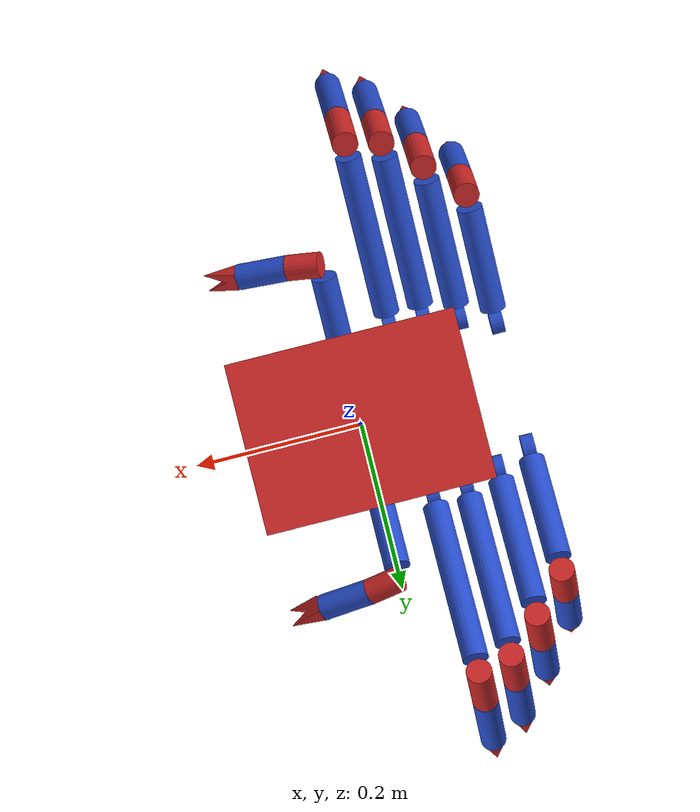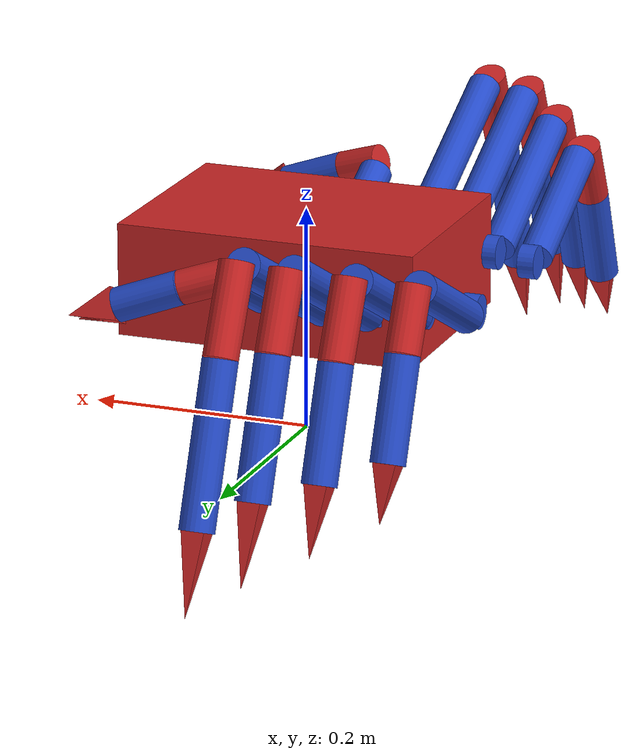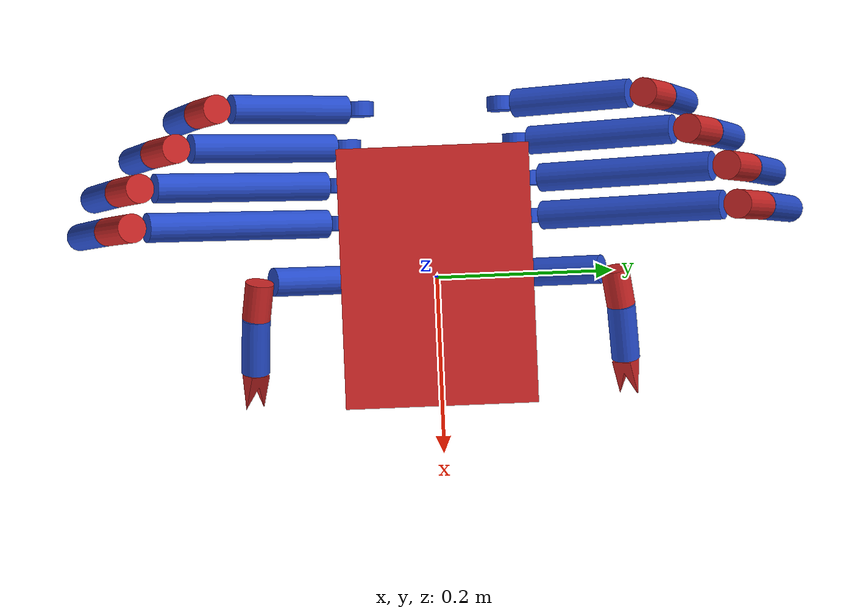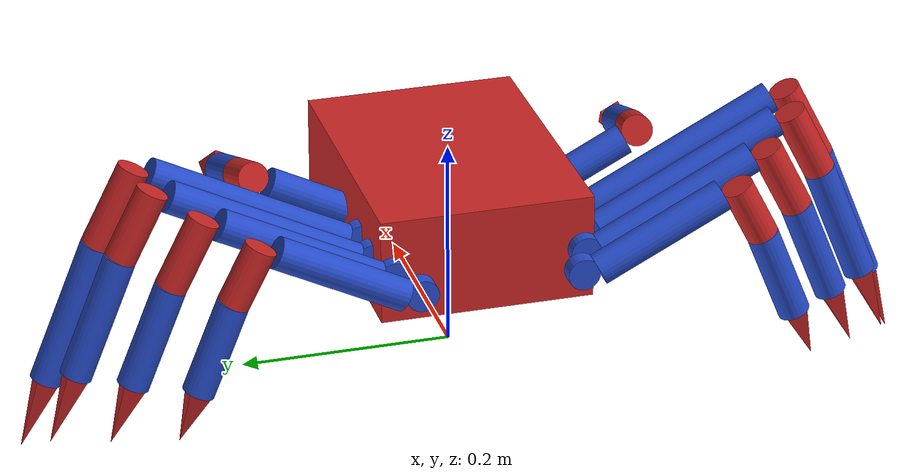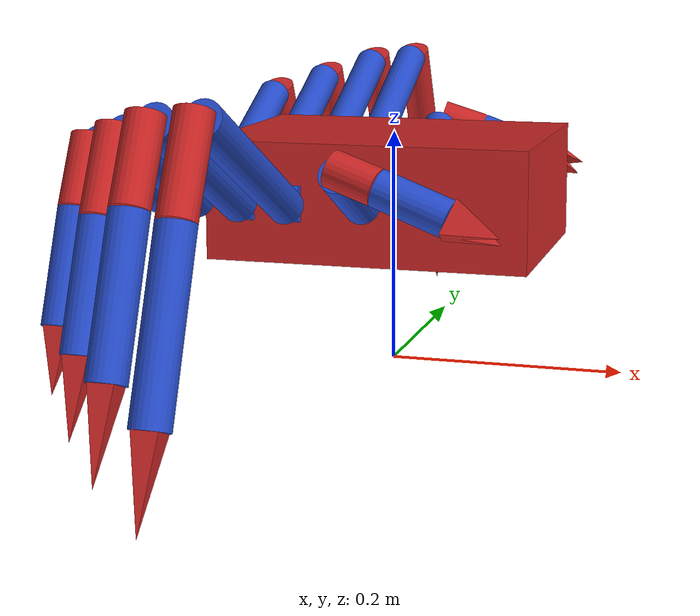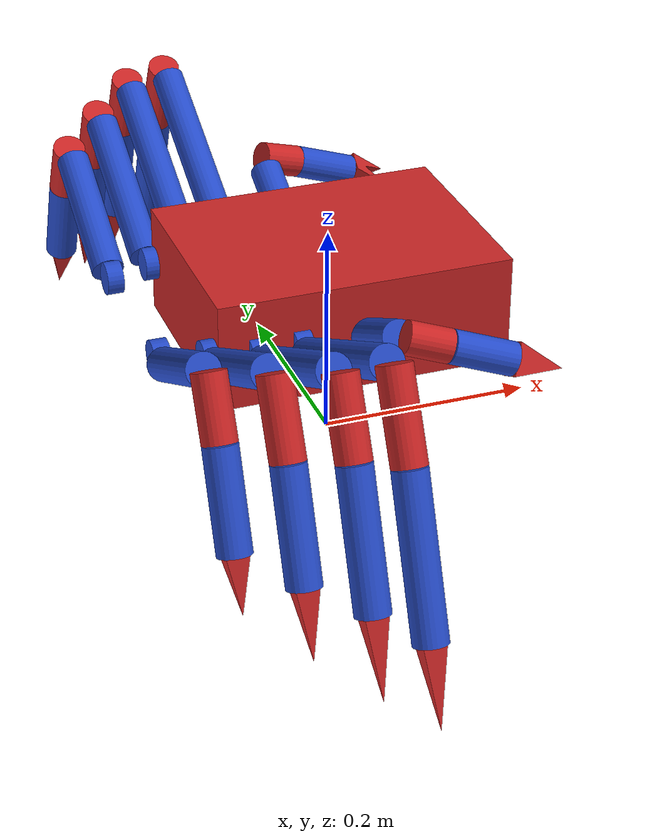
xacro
<?xml version="1.0"?>
<robot xmlns:xacro="http://www.ros.org/wiki/xacro" name="spider_crab">

  <xacro:arg name="use_ros2_control" default="false"/>
  <xacro:arg name="use_sim_time" default="true"/>

  <xacro:include filename="colors.xacro"/>
  <xacro:include filename="inertial_macros.xacro"/>
  <xacro:include filename="crab_properties.xacro"/>
  <xacro:include filename="crab_legs.xacro"/>
  <xacro:include filename="ros2_control_leg.xacro"/>
  <xacro:include filename="ros2_control_crab.xacro"/>

  <!--BASE LINK-->

  <link name = "base_link"></link>

  <!-- BODY JOINT AND LINK-->

  <joint name="body_joint" type="fixed">
    <parent link="base_link"/>
    <child link="body_link"/>
    <origin xyz="0 0 ${body_link_height}" rpy="0 0 0"/>
  </joint>

  <link name ="body_link">
    <visual>
      <origin xyz="0 0 0" rpy="0 0 0"/>
      <geometry>
        <!-- this mesh is constructed by two Ellipsoids with radius 10cm and radius 7cm seperately -->
        <!-- Connect the two origins of ELlipsoids-->
        <!-- The center of body locates at the intersection of the large Ellipsoid and the staight line-->
        <box size="0.27 0.20 0.1"/>

        <!-- mesh filename="package://crab_model/meshes/crab_body.stl" scale="0.01 0.01 0.01"/ -->
      </geometry>
      <material name="red"/>
    </visual>
    <collision>
      <origin xyz="0 0 0" rpy="0 0 0"/>
      <geometry>
        <box size="0.27 0.20 0.1"/>
        <!-- mesh filename="package://crab_model/meshes/crab_body.stl" scale="0.01 0.01 0.01"/ -->
      </geometry>
    </collision>
    <xacro:inertial_box mass="1.0" x="0.1" y="0.1" z="0.10">
      <origin xyz="0 0 0" rpy="0 0 0"/>
    </xacro:inertial_box>
  </link>

  <!-- EYES JOINT AND LINK-->

  <joint name ="eyes_left" type="fixed">
    <parent link="body_link"/>
    <child link="eyes_left"/>
    <origin xyz="0.07 0.02 0.0" rpy="0.0 1.57 0.16"/>
  </joint>

  <link name="eyes_left">
    <visual>
      <origin xyz="0.0 0.0 0.015" rpy="0.0 0.0 0.0"/>
      <geometry>
        <cylinder length="0.015" radius = "0.005"/>
      </geometry>
      <material name="black"/>
    </visual>
    <collision>
      <origin xyz="0.0 0.0 0.015" rpy="0.0 0.0 0.0"/>
      <geometry>
        <cylinder length="0.015" radius = "0.005"/>
      </geometry>
    </collision>
    <xacro:inertial_box mass="1e-3" x="1e-2" y="1e-2" z="1e-2">
      <origin xyz="0.0 0.0 0.0" rpy="0.0 0.0 0.0"/>
    </xacro:inertial_box>
  </link>

  <joint name ="eyes_right" type="fixed">
    <parent link="body_link"/>
    <child link="eyes_right"/>
    <origin xyz="0.07 -0.02 0.0" rpy="0.0 1.57 -0.16"/>
  </joint>

  <link name="eyes_right">
    <visual>
      <origin xyz="0.0 0.0 0.015" rpy="0.0 0.0 0.0"/>
      <geometry>
        <cylinder length="0.015" radius = "0.005"/>
      </geometry>
      <material name="black"/>
    </visual>
    <collision>
      <origin xyz="0.0 0.0 0.015" rpy="0.0 0.0 0.0"/>
      <geometry>
        <cylinder length="0.015" radius = "0.005"/>
      </geometry>
    </collision>
    <xacro:inertial_box mass="1e-3" x="1e-2" y="1e-2" z="1e-2">
      <origin xyz="0.0 0.0 0.0" rpy="0.0 0.0 0.0"/>
    </xacro:inertial_box>
  </link>

  <gazebo reference="body_link">
      <material>Gazebo/Red</material>
  </gazebo>

  <gazebo reference="eyes_left">
      <material>Gazebo/Black</material>
  </gazebo>

  <gazebo reference="eyes_right">
      <material>Gazebo/Black</material>
  </gazebo>

  <!-- CRAB LEGS-->
  <!-- reflect=1 means left side-->
  <xacro:leg suffix="F1" reflect="1" Ox="0.0" Oy="0.085" Oz="0.0" merus_link_length="0.08" carpus_link_length="0.04" manus_link_length ="0.06" fore_leg_Rz="-1.22" dactyl="-1" scale_x="0.001" scale_y="0.001" scale_z="0.0042"/>
  <xacro:leg suffix="F2" reflect="-1" Ox="0.0" Oy="-0.085" Oz="0.0" merus_link_length="0.08" carpus_link_length="0.04" manus_link_length ="0.06" fore_leg_Rz="-1.22" dactyl="-1" scale_x="0.001" scale_y="0.001" scale_z="0.0042"/>
  <xacro:leg suffix="L1" reflect="1" Ox="-0.06" Oy="0.1" Oz="0.0" merus_link_length="0.20" carpus_link_length="0.08" manus_link_length ="0.14" fore_leg_Rz="0.0" dactyl="1" scale_x="0.001" scale_y="0.001" scale_z="0.007"/>
  <xacro:leg suffix="L2" reflect="1" Ox="-0.10" Oy="0.1" Oz="0.0" merus_link_length="0.19" carpus_link_length="0.07" manus_link_length ="0.12" fore_leg_Rz="0.0" dactyl="1" scale_x="0.001" scale_y="0.001" scale_z="0.007"/>
  <xacro:leg suffix="L3" reflect="1" Ox="-0.14" Oy="0.09" Oz="0.0" merus_link_length="0.16" carpus_link_length="0.07" manus_link_length ="0.10" fore_leg_Rz="0.0" dactyl="1" scale_x="0.001" scale_y="0.001" scale_z="0.006"/>
  <xacro:leg suffix="L4" reflect="1" Ox="-0.18" Oy="0.075" Oz="0.0" merus_link_length="0.13" carpus_link_length="0.058" manus_link_length ="0.09" fore_leg_Rz="0.0" dactyl="1" scale_x="0.001" scale_y="0.001" scale_z="0.005"/>
  <xacro:leg suffix="R1" reflect="-1" Ox="-0.06" Oy="-0.1" Oz="0.0" merus_link_length="0.20" carpus_link_length="0.08" manus_link_length ="0.14" fore_leg_Rz="0.0" dactyl="1" scale_x="0.001" scale_y="0.001" scale_z="0.007"/>
  <xacro:leg suffix="R2" reflect="-1" Ox="-0.10" Oy="-0.1" Oz="0.0" merus_link_length="0.19" carpus_link_length="0.07" manus_link_length ="0.12" fore_leg_Rz="0.0" dactyl="1" scale_x="0.001" scale_y="0.001" scale_z="0.007"/>
  <xacro:leg suffix="R3" reflect="-1" Ox="-0.14" Oy="-0.09" Oz="0.0" merus_link_length="0.16" carpus_link_length="0.07" manus_link_length ="0.10" fore_leg_Rz="0.0" dactyl="1" scale_x="0.001" scale_y="0.001" scale_z="0.006"/>
  <xacro:leg suffix="R4" reflect="-1" Ox="-0.18" Oy="-0.075" Oz="0.0" merus_link_length="0.13" carpus_link_length="0.058" manus_link_length ="0.09" fore_leg_Rz="0.0" dactyl="1" scale_x="0.001" scale_y="0.001" scale_z="0.005"/>

</robot>

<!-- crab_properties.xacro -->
<robot xmlns:xacro="http://www.ros.org/wiki/xacro" >

    <!-- Constant parameters -->

    <xacro:property name="body_link_mass" value="1.0" /> <!-- Kg -->
    <xacro:property name="body_link_height" value="0.15" />
    <xacro:property name="body_link_Rx" value="0.0" /> <!-- rad -->
    <xacro:property name="body_link_Ry" value="0.0" /> <!-- rad -->
    <xacro:property name="body_link_Rz" value="0.0" /> <!-- rad -->

    <xacro:property name="coxa_link_mass" value="0.301" /> <!-- Kg -->
    <xacro:property name="coxa_link_Ox" value="0.0" />
    <xacro:property name="coxa_link_Oy" value="0.0" />
    <xacro:property name="coxa_link_Oz" value="0.0" />
    <xacro:property name="coxa_link_Ry" value="-1.57" /> <!-- rad -->
    <xacro:property name="coxa_link_length" value="0.015" />
    <xacro:property name="coxa_link_radius" value="0.015" />

    <xacro:property name="merus_link_mass" value="0.501" /> <!-- Kg -->
    <xacro:property name="merus_joint_Ox" value="0.0" />
    <xacro:property name="merus_joint_Oy" value="${coxa_link_radius}" />
    <xacro:property name="merus_joint_Oz" value="0.0" />
    <xacro:property name="merus_joint_Rx" value="-1.1" /> <!-- rad -->
    <xacro:property name="merus_link_Ox" value="0.0" />
    <xacro:property name="merus_link_Oy" value="0.0" />
    <xacro:property name="merus_link_Oz" value="0.0"/>
    <xacro:property name="merus_link_radius" value="0.015" />

    <xacro:property name="carpus_link_mass" value="0.501" /> <!-- Kg -->
    <xacro:property name="carpus_joint_Ox" value="0.0" />
    <xacro:property name="carpus_joint_Oy" value="0.0" />
    <xacro:property name="carpus_joint_Oz" value="0.0" />
    <xacro:property name="carpus_joint_Rx" value="-1.57" /> <!-- rad -->
    <xacro:property name="carpus_link_Ox" value="0.0" />
    <xacro:property name="carpus_link_Oy" value="0.0" />
    <xacro:property name="carpus_link_Oz" value="0.0" />
    <xacro:property name="carpus_link_radius" value="0.015" />

    <xacro:property name="manus_link_mass" value="0.501" /> <!-- Kg -->
    <xacro:property name="manus_joint_Ox" value="0.0" />
    <xacro:property name="manus_joint_Oy" value="0.0" />
    <xacro:property name="manus_joint_Oz" value="0.0" />
    <xacro:property name="manus_joint_Rx" value="-0.087" /> <!-- rad -->
    <xacro:property name="manus_link_Ox" value="0.0" />
    <xacro:property name="manus_link_Oy" value="0.0" />
    <xacro:property name="manus_link_Oz" value="0.0" />
    <xacro:property name="manus_link_radius" value="0.015" />

    <xacro:property name="dactyl_mass" value="0.01" /> <!-- Kg -->
    <xacro:property name="dactyl_radius" value="0.015" />
    <xacro:property name="dactyl_joint_Ox" value="0.0" />
    <xacro:property name="dactyl_joint_Oy" value="0.0" />
    <xacro:property name="dactyl_joint_Oz" value="0.0" />
    <xacro:property name="dactyl_joint_Ry" value="0.0" /> <!-- rad -->
    <xacro:property name="dactyl_link_Ox" value="0.0" />
    <xacro:property name="dactyl_link_Oy" value="0.0" />
    <xacro:property name="dactyl_link_Oz" value="0.0" />
</robot>

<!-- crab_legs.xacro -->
<robot xmlns:xacro="http://www.ros.org/wiki/xacro">

    <!-- FORE LEGS -->

    <xacro:macro name="leg" params="suffix reflect Ox Oy Oz merus_link_length carpus_link_length manus_link_length fore_leg_Rz dactyl scale_x scale_y scale_z">

        <!-- COXA JOINT AND LINK-->

        <joint name="coxa_joint_${suffix}" type="revolute">
                <origin xyz="${Ox} ${Oy} ${Oz}" rpy="0.0 0.0 0.0"/>
                <parent link="body_link"/>
                <child link="coxa_link_${suffix}"/>
                <limit effort="250.0" velocity="10.0" lower="-3.14" upper="3.14" />
                <axis xyz="0 0 1"/>
                <dynamics damping="0.7"/>
        </joint>

        <link name="coxa_link_${suffix}">
            <visual>
                <origin xyz="${coxa_link_Ox} ${coxa_link_Oy} ${coxa_link_Oz}" rpy=" 0.0  ${coxa_link_Ry} 0.0"/>
                <geometry>
                    <cylinder length="${coxa_link_length}" radius="${coxa_link_radius}"/>
                </geometry>
                <material name="blue"/>
            </visual>
            <collision>
                <origin xyz="${coxa_link_Ox} ${coxa_link_Oy} ${coxa_link_Oz}" rpy=" 0.0  ${coxa_link_Ry} 0.0"/>
                <geometry>
                    <cylinder length="${coxa_link_length}" radius="${coxa_link_radius}"/>
                </geometry>
            </collision>
            <xacro:inertial_cylinder mass="${coxa_link_mass}" length="${coxa_link_length}" radius="${coxa_link_radius}">
                <origin xyz="${coxa_link_Ox} ${coxa_link_Oy} ${coxa_link_Oz}" rpy=" 0.0  ${coxa_link_Ry} 0.0"/>
            </xacro:inertial_cylinder>
        </link>

        <!-- MERUS JOINT AND JOINT-->
        <joint name="merus_joint_${suffix}" type="revolute">
            <origin xyz="${merus_joint_Ox} ${reflect*merus_joint_Oy} ${merus_joint_Oz}" rpy="${reflect*merus_joint_Rx} 0.0 0.0"/>
            <parent link="coxa_link_${suffix}"/>
            <child link="merus_link_${suffix}"/>
            <limit effort="250.0" velocity="10.0" lower="-3.14" upper="3.14" />
            <axis xyz="1 0 0"/>
        </joint>

        <link name="merus_link_${suffix}">
            <visual>
                <origin xyz="${merus_link_Ox} ${merus_link_Oy} ${merus_link_length/2}" rpy="0.0 0.0 0.0"/>
                <geometry>
                    <cylinder length="${merus_link_length}" radius="${merus_link_radius}"/>
                </geometry>
                <material name="blue"/>
            </visual>
            <collision>
                <origin xyz="${merus_link_Ox} ${merus_link_Oy} ${merus_link_length/2}" rpy="0.0 0.0 0.0"/>
                <geometry>
                    <cylinder length="${merus_link_length}" radius="${merus_link_radius}"/>
                </geometry>
            </collision>
            <xacro:inertial_cylinder mass="${merus_link_mass}" length="${merus_link_length}" radius="${merus_link_radius}">
                <origin xyz="${merus_link_Ox} ${merus_link_Oy} ${merus_link_length/2}" rpy="0.0 0.0 0.0"/>
            </xacro:inertial_cylinder>
        </link>

        <!-- CARPUS JOINT AND LINK-->

        <joint name="carpus_joint_${suffix}" type="revolute">
            <origin xyz="${carpus_joint_Ox} ${carpus_joint_Oy} ${merus_link_length+carpus_link_radius}" rpy="${reflect*carpus_joint_Rx} 0.0 ${reflect*fore_leg_Rz}"/>
            <parent link="merus_link_${suffix}"/>
            <child link="carpus_link_${suffix}"/>
            <limit effort="250.0" velocity="10.0" lower="-3.14" upper="3.14" />
            <axis xyz="${reflect} 0 0"/>
            <dynamics damping="0.7"/>
        </joint>

        <link name="carpus_link_${suffix}">
            <visual>
                <origin xyz="${carpus_link_Ox} ${carpus_link_Oy} ${carpus_link_length/2}" rpy="0.0 0.0 0.0"/>
                <geometry>
                    <cylinder length="${carpus_link_length}" radius = "${carpus_link_radius}"/>
                </geometry>
                <material name="red"/>
            </visual>
            <collision>
                <origin xyz="${carpus_link_Ox} ${carpus_link_Oy} ${carpus_link_length/2}" rpy="0.0 0.0 0.0"/>
                <geometry>
                    <cylinder length="${carpus_link_length}" radius = "${carpus_link_radius}"/>
                </geometry>
            </collision>
            <xacro:inertial_cylinder mass="${carpus_link_mass}" length="${carpus_link_length}" radius="${carpus_link_radius}">
                <origin xyz="${carpus_link_Ox} ${carpus_link_Oy} ${carpus_link_length/2}" rpy="0.0 0.0 0.0"/>
            </xacro:inertial_cylinder>
        </link>

        <!-- MANUS JOINT AND LINK -->
        <joint name="manus_joint_${suffix}" type="revolute">
            <origin xyz="${manus_joint_Ox} ${manus_joint_Oy} ${carpus_link_length}" rpy="${reflect*manus_joint_Rx} 0.0 0.0"/>
            <parent link="carpus_link_${suffix}"/>
            <child link="manus_link_${suffix}"/>
            <limit effort="250.0" velocity="10.0" lower="-3.14" upper="3.14" />
            <axis xyz="0 1 0"/>
            <dynamics damping="0.7"/>
        </joint>

        <link name="manus_link_${suffix}">
            <visual>
                <origin xyz="0.0 0.0 ${manus_link_length/2}" rpy="0.0 0.0 0.0"/>
                <geometry>
                    <cylinder length="${manus_link_length}" radius = "${manus_link_radius}"/>
                </geometry>
                <material name="blue"/>
            </visual>
            <collision>
                <origin xyz="0.0 0.0 ${manus_link_length/2}" rpy="0.0 0.0 0.0"/>
                <geometry>
                    <cylinder length="${manus_link_length}" radius = "${manus_link_radius}"/>
                </geometry>
            </collision>
            <xacro:inertial_cylinder mass="${manus_link_mass}" length="${manus_link_length}" radius="${manus_link_radius}">
                <origin xyz="0.0 0.0 ${manus_link_length/2}" rpy="0.0 0.0 0.0"/>
            </xacro:inertial_cylinder>
        </link>

        <!-- DACTYL JOINT AND LINK-->

        <joint name="dactyl_joint_${suffix}" type="fixed">
            <origin xyz="0.0 0.0 ${manus_link_length}" rpy="0.0 0.0 0.0"/>
            <parent link="manus_link_${suffix}"/>
            <child link="dactyl_link_${suffix}"/>
            <dynamics damping="0.7"/>
        </joint>

        <xacro:if value="${dactyl == 1}">
            <link name="dactyl_link_${suffix}">
                <visual>
                    <origin xyz="${dactyl_link_Ox} ${dactyl_link_Oy} ${dactyl_link_Oz}" rpy="0.0 0.0 0.0"/>
                    <geometry>
                        <mesh filename="package://crab_model/meshes/dactyl.stl" scale="${scale_x} ${scale_y} ${scale_z}"/>
                    </geometry>
                    <material name="red"/>
                </visual>
                <collision>
                    <origin xyz="${dactyl_link_Ox} ${dactyl_link_Oy} ${dactyl_link_Oz}" rpy="0.0 0.0 0.0"/>
                    <geometry>
                        <mesh filename="package://crab_model/meshes/dactyl.stl" scale="${scale_x} ${scale_y} ${scale_z}"/>
                    </geometry>
                </collision>
                <xacro:inertial_sphere mass="${dactyl_mass}" radius="${dactyl_radius}">
                    <origin xyz="${dactyl_link_Ox} ${dactyl_link_Oy} ${dactyl_link_Oz}" rpy="0.0 0.0 0.0"/>
                </xacro:inertial_sphere>
            </link>
        </xacro:if>

        <xacro:unless value="${dactyl == 1}">
            <link name="dactyl_link_${suffix}">
                <visual>
                    <origin xyz="${dactyl_link_Ox} ${dactyl_link_Oy} ${dactyl_link_Oz}" rpy="0.0 0.0 0.0"/>
                    <geometry>
                        <mesh filename="package://crab_model/meshes/crab_claw.stl" scale="${scale_x} ${scale_y} ${scale_z}"/>
                    </geometry>
                    <material name="red"/>
                </visual>
                <collision>
                    <origin xyz="${dactyl_link_Ox} ${dactyl_link_Oy} ${dactyl_link_Oz}" rpy="0.0 0.0 0.0"/>
                    <geometry>
                        <mesh filename="package://crab_model/meshes/crab_claw.stl" scale="${scale_x} ${scale_y} ${scale_z}"/>
                    </geometry>
                </collision>
                <xacro:inertial_sphere mass="${dactyl_mass}" radius="${dactyl_radius}">
                    <origin xyz="${dactyl_link_Ox} ${dactyl_link_Oy} ${dactyl_link_Oz}" rpy="0.0 0.0 0.0"/>
                </xacro:inertial_sphere>
            </link>
        </xacro:unless>

        <gazebo reference = "coxa_link_${suffix}">
            <material>Gazebo/Blue</material>
        </gazebo>

        <gazebo reference = "merus_link_${suffix}">
            <material>Gazebo/Blue</material>
        </gazebo>

        <gazebo reference = "carpus_link_${suffix}">
            <material>Gazebo/Blue</material>
        </gazebo>

        <gazebo reference = "manus_link_${suffix}">
            <material>Gazebo/Blue</material>
        </gazebo>

        <gazebo reference = "dactyl_link_${suffix}">
            <material>Gazebo/Blue</material>
        </gazebo>

    </xacro:macro>

</robot>
